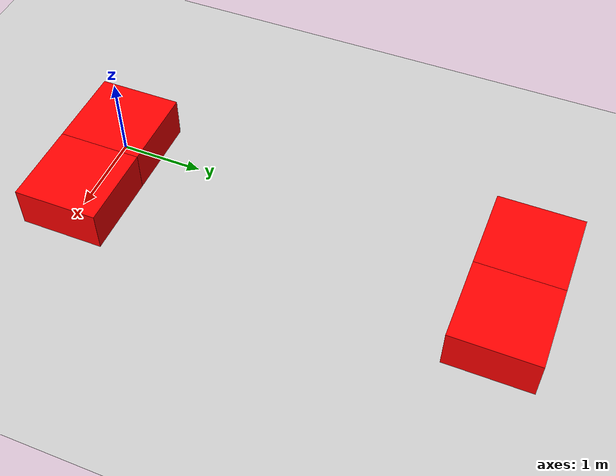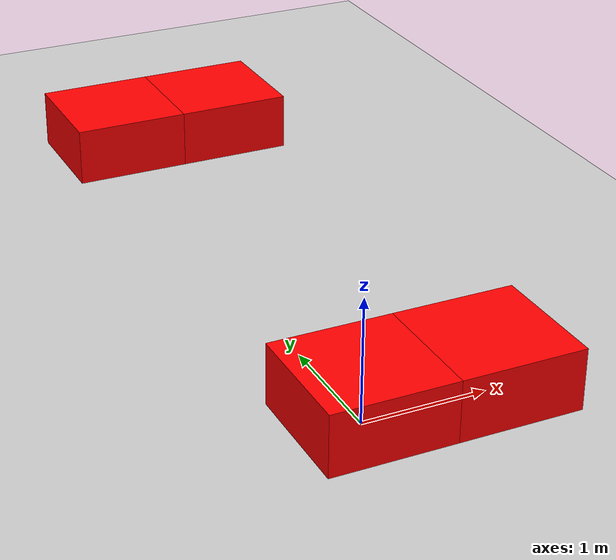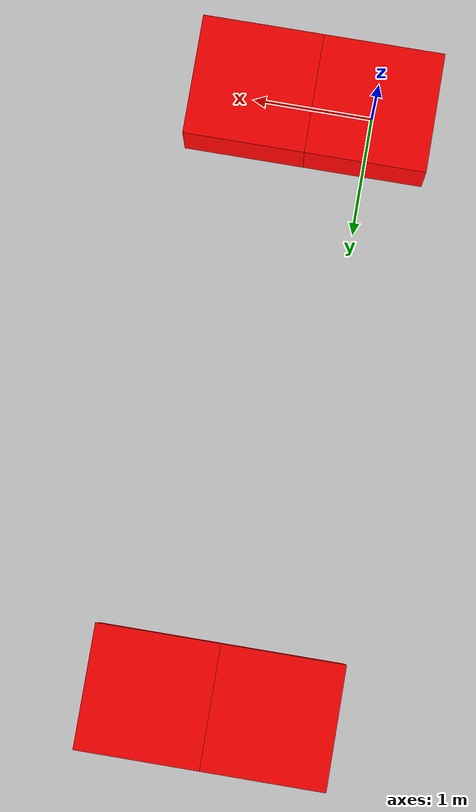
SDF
<?xml version="1.0"?>
<sdf version="1.8">
  <world name="default">

    <model name="ground_plane">
      <static>true</static>
      <link name="link">
        <collision name="collision">
          <geometry>
            <plane>
              <normal>0 0 1</normal>
            </plane>
          </geometry>
        </collision>
        <visual name="visual">
          <geometry>
            <plane>
              <normal>0 0 1</normal>
              <size>100 100</size>
            </plane>
          </geometry>
        </visual>
      </link>
    </model>

    <model name="M1">
      <pose>0 0 0.25 0 0.0 0</pose>
      <!-- link1 doesn't have a collision so it would fall indefinitely if the
      constraint created by joint j1 is not enforced -->
      <link name="link1">
        <visual name="box_visual">
          <geometry>
            <box>
              <size>1 1 0.5</size>
            </box>
          </geometry>
          <material>
            <ambient>1 0 0 1</ambient>
            <diffuse>1 0 0 1</diffuse>
            <specular>1 0 0 1</specular>
          </material>
        </visual>
      </link>
      <joint name="j1" type="fixed">
        <parent>link1</parent>
        <child>nested_model::link2</child>
      </joint>

      <model name="nested_model">
        <pose>1 0 0.0 0 0.0 0</pose>
        <link name="link2">
          <collision name="box_collision">
            <geometry>
              <box>
                <size>1 1 0.5</size>
              </box>
            </geometry>
          </collision>

          <visual name="box_visual">
            <geometry>
              <box>
                <size>1 1 0.5</size>
              </box>
            </geometry>
            <material>
              <ambient>1 0 0 1</ambient>
              <diffuse>1 0 0 1</diffuse>
              <specular>1 0 0 1</specular>
            </material>
          </visual>
        </link>
      </model>
    </model>

    <!-- This model is the same as M1 except the model pose and the parent and child elements of joint j1-->
    <model name="M2">
      <pose>0 5 0.25 0 0.0 0</pose>
      <!-- link1 doesn't have a collision so it would fall indefinitely if the
      constraint created by joint j1 is not enforced -->
      <link name="link1">
        <visual name="box_visual">
          <geometry>
            <box>
              <size>1 1 0.5</size>
            </box>
          </geometry>
          <material>
            <ambient>1 0 0 1</ambient>
            <diffuse>1 0 0 1</diffuse>
            <specular>1 0 0 1</specular>
          </material>
        </visual>
      </link>
      <joint name="j1" type="fixed">
        <parent>nested_model::link2</parent>
        <child>link1</child>
      </joint>

      <model name="nested_model">
        <pose>1.0 0 0.0 0 0.0 0</pose>
        <link name="link2">
          <collision name="box_collision">
            <geometry>
              <box>
                <size>1 1 0.5</size>
              </box>
            </geometry>
          </collision>

          <visual name="box_visual">
            <geometry>
              <box>
                <size>1 1 0.5</size>
              </box>
            </geometry>
            <material>
              <ambient>1 0 0 1</ambient>
              <diffuse>1 0 0 1</diffuse>
              <specular>1 0 0 1</specular>
            </material>
          </visual>
        </link>
      </model>
    </model>
  </world>
</sdf>
